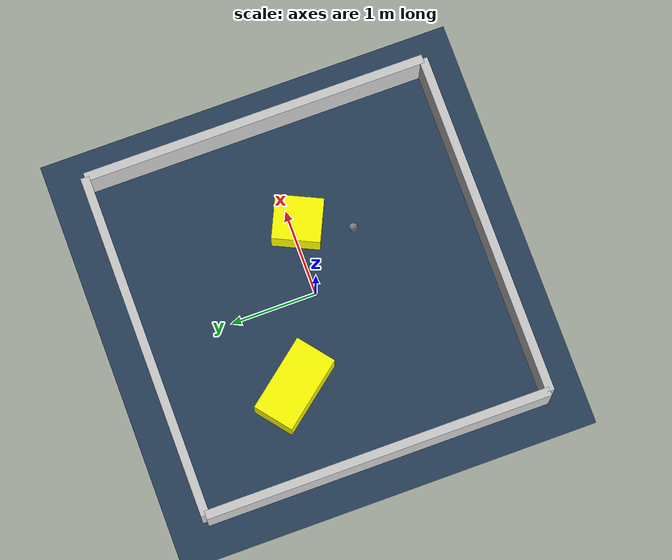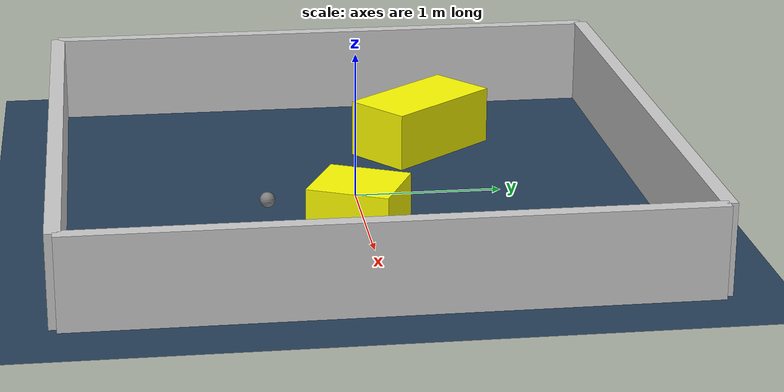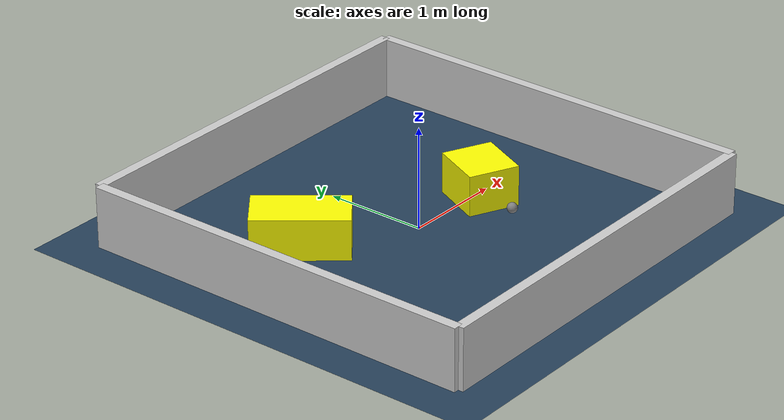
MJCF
<?xml version="1.0" ?>
<mujoco model="generated_environment">
  <option timestep="0.01" integrator="RK4" cone="elliptic"/>
  <default>
    <geom density="1"/>
  </default>
  <asset>
    <texture builtin="gradient" height="3072" rgb1="0.3 0.5 0.7" rgb2="0 0 0" type="skybox" width="512"/>
    <texture builtin="checker" height="300" mark="edge" markrgb="0.8 0.8 0.8" name="groundplane" rgb1="0.2 0.3 0.4" rgb2="0.1 0.2 0.3" type="2d" width="300"/>
    <material name="groundplane" reflectance="0.2" texrepeat="5 5" texture="groundplane" texuniform="true"/>
    <material name="robot" rgba="0.0 1.0 0.0 1"/>
  </asset>
  <worldbody>
    <light dir="0 0 -1" directional="true" pos="0 0 1.5"/>
    <geom condim="4" friction="1.0 0.005 0.001" material="groundplane" name="floor" size="0 0 0.05" type="plane"/>
    <body name="walls">
      <geom name="wall_1" condim="4" pos="-2.0 0.0 0.3" rgba="0.800000011920929 0.800000011920929 0.800000011920929 1.0" size="0.05 2.0 0.3" type="box"/>
      <geom name="wall_2" condim="4" pos="2.0 0.0 0.3" rgba="0.800000011920929 0.800000011920929 0.800000011920929 1.0" size="0.05 2.0 0.3" type="box"/>
      <geom name="wall_3" condim="4" pos="0.0 -2.0 0.3" rgba="0.800000011920929 0.800000011920929 0.800000011920929 1.0" size="2.0 0.05 0.3" type="box"/>
      <geom name="wall_4" condim="4" pos="0.0 2.0 0.3" rgba="0.800000011920929 0.800000011920929 0.800000011920929 1.0" size="2.0 0.05 0.3" type="box"/>
    </body>
    <body name="robot">
      <joint name="joint_x" type="slide" pos="0 0 0" axis="1 0 0"/>
      <joint name="joint_y" type="slide" pos="0 0 0" axis="0 1 0"/>
      <geom name="robot" type="sphere" pos="0.533716793232518 -0.6434465362529347 0.2" size="0.05" mass="5." friction="1.0 0.005 0.0001" condim="4"/>
      <site name="sensor_ball"/>
    </body>
    <body name="obstacle_1_movable">
      <geom name="obstacle_1_movable" condim="4" pos="0.8016766465548422 -0.07685127973700712 0.2" euler="0 0 155.00760308579405" friction="1.0 0.005 0.001" rgba="1 1 0 1" size="0.2516531006392754 0.2744032248180568 0.2" type="box" mass="0.1"/>
      <joint type="free"/>
    </body>
    <body name="obstacle_2_movable">
      <geom name="obstacle_2_movable" condim="4" pos="-0.9371742647218978 0.589635664658321 0.2" euler="0 0 38.606953116952084" friction="1.0 0.005 0.001" rgba="1 1 0 1" size="0.24252141397640373 0.45419899979687967 0.2" type="box" mass="0.1"/>
      <joint type="free"/>
    </body>
  </worldbody>
  <actuator>
    <motor name="actuator_x" joint="joint_x" gear="1" ctrlrange="-1 1"/>
    <motor name="actuator_y" joint="joint_y" gear="1" ctrlrange="-1 1"/>
  </actuator>
</mujoco>
